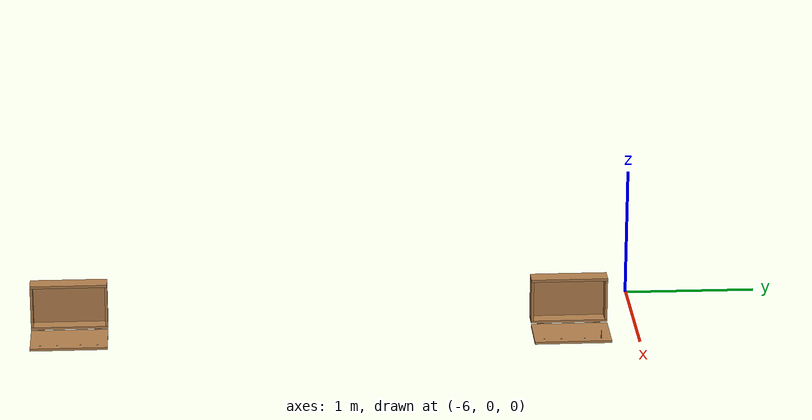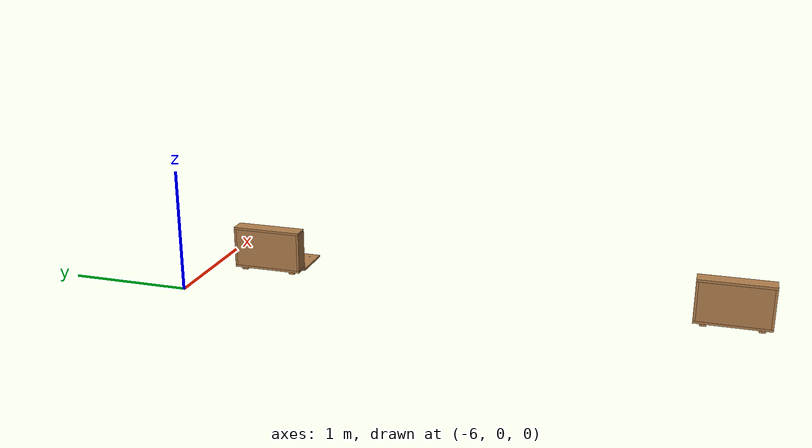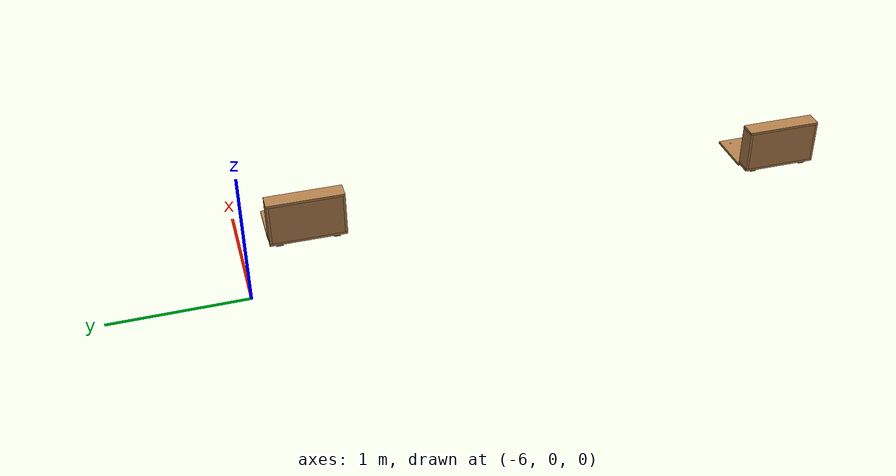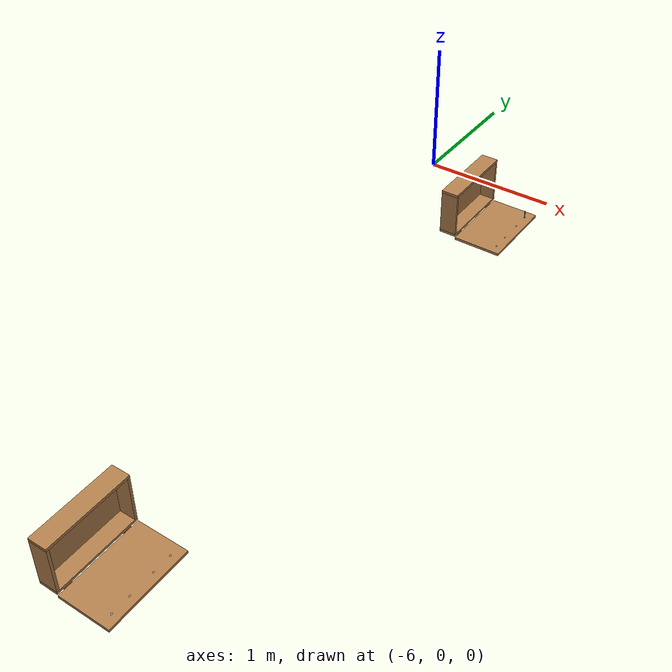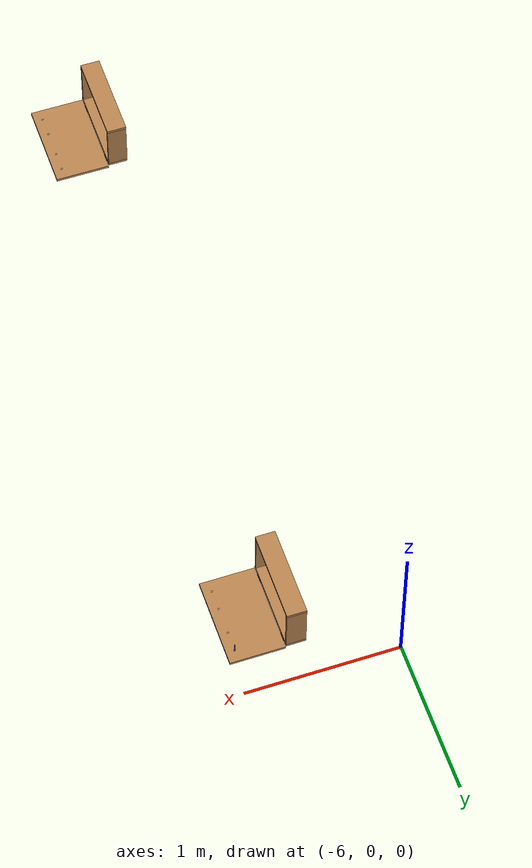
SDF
<sdf version="1.6">
 <world name="default">
  <model name="wooden_case">
   <link name="base">
    <pose>0 0 0.024 0 -0 0</pose>
    <inertial>
     <pose>-0.022184 0 0.171592 0 -0 0</pose>
     <mass>3.96264</mass>
     <inertia>
      <ixx>0.213536</ixx>
      <ixy>0</ixy>
      <ixz>0.000779377</ixz>
      <iyy>0.0708943</iyy>
      <iyz>0</iyz>
      <izz>0.154604</izz>
     </inertia>
    </inertial>
    <collision name="collision_back">
     <pose>-0.053975 0 0.1778 0 -0 0</pose>
     <geometry><box><size>0.01905 0.5461 0.3175</size></box></geometry>
     <surface>
      <contact>
       <poissons_ratio>0.347</poissons_ratio>
       <elastic_modulus>8.8e+09</elastic_modulus>
       <ode><kp>100000</kp><kd>100</kd><max_vel>100</max_vel><min_depth>0.001</min_depth></ode>
      </contact>
      <friction>
       <torsional>
        <coefficient>1</coefficient>
        <use_patch_radius>0</use_patch_radius>
        <surface_radius>0.01</surface_radius>
       </torsional>
      </friction>
     </surface>
    </collision>
    <visual name="visual_back">
     <pose>-0.053975 0 0.1778 0 -0 0</pose>
     <geometry><box><size>0.01905 0.5461 0.3175</size></box></geometry>
     <material>
      <script><uri>file://media/materials/scripts/gazebo.material</uri><name>Gazebo/Wood</name></script>
     </material>
    </visual>
    <collision name="collision_bottom">
     <pose>0 0 0.009525 0 -0 0</pose>
     <geometry><box><size>0.127 0.5842 0.01905</size></box></geometry>
     <surface>
      <contact>
       <poissons_ratio>0.347</poissons_ratio>
       <elastic_modulus>8.8e+09</elastic_modulus>
       <ode><kp>100000</kp><kd>100</kd><max_vel>100</max_vel><min_depth>0.001</min_depth></ode>
      </contact>
      <friction>
       <torsional>
        <coefficient>1</coefficient>
        <use_patch_radius>0</use_patch_radius>
        <surface_radius>0.01</surface_radius>
       </torsional>
      </friction>
     </surface>
    </collision>
    <visual name="visual_bottom">
     <pose>0 0 0.009525 0 -0 0</pose>
     <geometry><box><size>0.127 0.5842 0.01905</size></box></geometry>
     <material>
      <script><uri>file://media/materials/scripts/gazebo.material</uri><name>Gazebo/Wood</name></script>
     </material>
    </visual>
    <collision name="collision_top">
     <pose>0 0 0.346075 0 -0 0</pose>
     <geometry><box><size>0.127 0.5842 0.01905</size></box></geometry>
     <surface>
      <contact>
       <poissons_ratio>0.347</poissons_ratio>
       <elastic_modulus>8.8e+09</elastic_modulus>
       <ode><kp>100000</kp><kd>100</kd><max_vel>100</max_vel><min_depth>0.001</min_depth></ode>
      </contact>
      <friction>
       <torsional>
        <coefficient>1</coefficient>
        <use_patch_radius>0</use_patch_radius>
        <surface_radius>0.01</surface_radius>
       </torsional>
      </friction>
     </surface>
    </collision>
    <visual name="visual_top">
     <pose>0 0 0.346075 0 -0 0</pose>
     <geometry><box><size>0.127 0.5842 0.01905</size></box></geometry>
     <material>
      <script><uri>file://media/materials/scripts/gazebo.material</uri><name>Gazebo/Wood</name></script>
     </material>
    </visual>
    <collision name="collision_left">
     <pose>0 -0.282575 0.1778 0 -0 0</pose>
     <geometry><box><size>0.127 0.01905 0.3175</size></box></geometry>
     <surface>
      <contact>
       <poissons_ratio>0.347</poissons_ratio>
       <elastic_modulus>8.8e+09</elastic_modulus>
       <ode><kp>100000</kp><kd>100</kd><max_vel>100</max_vel><min_depth>0.001</min_depth></ode>
      </contact>
      <friction>
       <torsional>
        <coefficient>1</coefficient>
        <use_patch_radius>0</use_patch_radius>
        <surface_radius>0.01</surface_radius>
       </torsional>
      </friction>
     </surface>
    </collision>
    <visual name="visual_left">
     <pose>0 -0.282575 0.1778 0 -0 0</pose>
     <geometry><box><size>0.127 0.01905 0.3175</size></box></geometry>
     <material>
      <script><uri>file://media/materials/scripts/gazebo.material</uri><name>Gazebo/Wood</name></script>
     </material>
    </visual>
    <collision name="collision_right">
     <pose>0 0.282575 0.1778 0 -0 0</pose>
     <geometry><box><size>0.127 0.01905 0.3175</size></box></geometry>
     <surface>
      <contact>
       <poissons_ratio>0.347</poissons_ratio>
       <elastic_modulus>8.8e+09</elastic_modulus>
       <ode><kp>100000</kp><kd>100</kd><max_vel>100</max_vel><min_depth>0.001</min_depth></ode>
      </contact>
      <friction>
       <torsional>
        <coefficient>1</coefficient>
        <use_patch_radius>0</use_patch_radius>
        <surface_radius>0.01</surface_radius>
       </torsional>
      </friction>
     </surface>
    </collision>
    <visual name="visual_right">
     <pose>0 0.282575 0.1778 0 -0 0</pose>
     <geometry><box><size>0.127 0.01905 0.3175</size></box></geometry>
     <material>
      <script><uri>file://media/materials/scripts/gazebo.material</uri><name>Gazebo/Wood</name></script>
     </material>
    </visual>
    <collision name="collision_block_left">
     <pose>0.0095 -0.2151 -0.012 0 -0 0</pose>
     <geometry><box><size>0.108 0.05 0.024</size></box></geometry>
     <surface>
      <contact>
       <poissons_ratio>0.347</poissons_ratio>
       <elastic_modulus>8.8e+09</elastic_modulus>
       <ode><kp>100000</kp><kd>100</kd><max_vel>100</max_vel><min_depth>0.001</min_depth></ode>
      </contact>
      <friction>
       <torsional>
        <coefficient>1</coefficient>
        <use_patch_radius>0</use_patch_radius>
        <surface_radius>0.01</surface_radius>
       </torsional>
      </friction>
     </surface>
    </collision>
    <visual name="visual_block_left">
     <pose>0.0095 -0.2151 -0.012 0 -0 0</pose>
     <geometry><box><size>0.108 0.05 0.024</size></box></geometry>
     <material>
      <script><uri>file://media/materials/scripts/gazebo.material</uri><name>Gazebo/Wood</name></script>
     </material>
    </visual>
    <collision name="collision_block_right">
     <pose>0.0095 0.2151 -0.012 0 -0 0</pose>
     <geometry><box><size>0.108 0.05 0.024</size></box></geometry>
     <surface>
      <contact>
       <poissons_ratio>0.347</poissons_ratio>
       <elastic_modulus>8.8e+09</elastic_modulus>
       <ode><kp>100000</kp><kd>100</kd><max_vel>100</max_vel><min_depth>0.001</min_depth></ode>
      </contact>
      <friction>
       <torsional>
        <coefficient>1</coefficient>
        <use_patch_radius>0</use_patch_radius>
        <surface_radius>0.01</surface_radius>
       </torsional>
      </friction>
     </surface>
    </collision>
    <visual name="visual_block_right">
     <pose>0.0095 0.2151 -0.012 0 -0 0</pose>
     <geometry><box><size>0.108 0.05 0.024</size></box></geometry>
     <material>
      <script><uri>file://media/materials/scripts/gazebo.material</uri><name>Gazebo/Wood</name></script>
     </material>
    </visual>
   </link>
   <link name="lid">
    <pose>0.243775 0 0.009525 0 -0 0</pose>
    <inertial>
     <mass>1.97874</mass>
     <inertia>
      <ixx>0.0563367</ixx>
      <ixy>0</ixy>
      <ixz>0</ixz>
      <iyy>0.020911</iyy>
      <iyz>0</iyz>
      <izz>0.0771281</izz>
     </inertia>
    </inertial>
    <collision name="collision">
     <geometry><box><size>0.3556 0.5842 0.01905</size></box></geometry>
     <surface>
      <contact>
       <poissons_ratio>0.347</poissons_ratio>
       <elastic_modulus>8.8e+09</elastic_modulus>
       <ode><kp>100000</kp><kd>100</kd><max_vel>100</max_vel><min_depth>0.001</min_depth></ode>
      </contact>
      <friction>
       <torsional>
        <coefficient>1</coefficient>
        <use_patch_radius>0</use_patch_radius>
        <surface_radius>0.01</surface_radius>
       </torsional>
      </friction>
     </surface>
    </collision>
    <visual name="visual">
     <geometry><box><size>0.3556 0.5842 0.01905</size></box></geometry>
     <material>
      <script><uri>file://media/materials/scripts/gazebo.material</uri><name>Gazebo/Wood</name></script>
     </material>
    </visual>
    <visual name="tee_nut_1">
     <pose>0.122 -0.216 0 0 -0 0</pose>
     <geometry><cylinder><radius>0.00635</radius><length>0.0192405</length></cylinder></geometry>
     <material>
      <script><uri>file://media/materials/scripts/gazebo.material</uri><name>Gazebo/Grey</name></script>
     </material>
    </visual>
    <visual name="tee_nut_2">
     <pose>0.122 -0.088 0 0 -0 0</pose>
     <geometry><cylinder><radius>0.00635</radius><length>0.0192405</length></cylinder></geometry>
     <material>
      <script><uri>file://media/materials/scripts/gazebo.material</uri><name>Gazebo/Grey</name></script>
     </material>
    </visual>
    <visual name="tee_nut_3">
     <pose>0.122 0.088 0 0 -0 0</pose>
     <geometry><cylinder><radius>0.00635</radius><length>0.0192405</length></cylinder></geometry>
     <material>
      <script><uri>file://media/materials/scripts/gazebo.material</uri><name>Gazebo/Grey</name></script>
     </material>
    </visual>
    <visual name="tee_nut_4">
     <pose>0.122 0.216 0 0 -0 0</pose>
     <geometry><cylinder><radius>0.00635</radius><length>0.0192405</length></cylinder></geometry>
     <material>
      <script><uri>file://media/materials/scripts/gazebo.material</uri><name>Gazebo/Grey</name></script>
     </material>
    </visual>
   </link>
   <joint name="lid_hinge" type="revolute">
    <pose>-0.1778 0 0.01905 0 -0 0</pose>
    <parent>base</parent>
    <child>lid</child>
    <axis>
     <xyz>0 1 0</xyz>
     <limit><upper>0.523599</upper><lower>-1.5708</lower></limit>
     <use_parent_model_frame>0</use_parent_model_frame>
     <dynamics><spring_reference>0</spring_reference><spring_stiffness>0</spring_stiffness></dynamics>
    </axis>
   </joint>
   <pose>-5.48873 -4.31559 0.003943 0 -0.000431 -3e-06</pose>
  </model>
  <model name="wooden_case_metal_peg">
   <link name="wooden_case::base">
    <pose>0 0 0.024 0 -0 0</pose>
    <inertial>
     <pose>-0.022184 0 0.171592 0 -0 0</pose>
     <mass>3.96264</mass>
     <inertia>
      <ixx>0.213536</ixx>
      <ixy>0</ixy>
      <ixz>0.000779377</ixz>
      <iyy>0.0708943</iyy>
      <iyz>0</iyz>
      <izz>0.154604</izz>
     </inertia>
    </inertial>
    <collision name="collision_back">
     <pose>-0.053975 0 0.1778 0 -0 0</pose>
     <geometry><box><size>0.01905 0.5461 0.3175</size></box></geometry>
     <surface>
      <contact>
       <poissons_ratio>0.347</poissons_ratio>
       <elastic_modulus>8.8e+09</elastic_modulus>
       <ode><kp>100000</kp><kd>100</kd><max_vel>100</max_vel><min_depth>0.001</min_depth></ode>
      </contact>
      <friction>
       <torsional>
        <coefficient>1</coefficient>
        <use_patch_radius>0</use_patch_radius>
        <surface_radius>0.01</surface_radius>
       </torsional>
      </friction>
     </surface>
    </collision>
    <visual name="visual_back">
     <pose>-0.053975 0 0.1778 0 -0 0</pose>
     <geometry><box><size>0.01905 0.5461 0.3175</size></box></geometry>
     <material>
      <script><uri>file://media/materials/scripts/gazebo.material</uri><name>Gazebo/Wood</name></script>
     </material>
    </visual>
    <collision name="collision_bottom">
     <pose>0 0 0.009525 0 -0 0</pose>
     <geometry><box><size>0.127 0.5842 0.01905</size></box></geometry>
     <surface>
      <contact>
       <poissons_ratio>0.347</poissons_ratio>
       <elastic_modulus>8.8e+09</elastic_modulus>
       <ode><kp>100000</kp><kd>100</kd><max_vel>100</max_vel><min_depth>0.001</min_depth></ode>
      </contact>
      <friction>
       <torsional>
        <coefficient>1</coefficient>
        <use_patch_radius>0</use_patch_radius>
        <surface_radius>0.01</surface_radius>
       </torsional>
      </friction>
     </surface>
    </collision>
    <visual name="visual_bottom">
     <pose>0 0 0.009525 0 -0 0</pose>
     <geometry><box><size>0.127 0.5842 0.01905</size></box></geometry>
     <material>
      <script><uri>file://media/materials/scripts/gazebo.material</uri><name>Gazebo/Wood</name></script>
     </material>
    </visual>
    <collision name="collision_top">
     <pose>0 0 0.346075 0 -0 0</pose>
     <geometry><box><size>0.127 0.5842 0.01905</size></box></geometry>
     <surface>
      <contact>
       <poissons_ratio>0.347</poissons_ratio>
       <elastic_modulus>8.8e+09</elastic_modulus>
       <ode><kp>100000</kp><kd>100</kd><max_vel>100</max_vel><min_depth>0.001</min_depth></ode>
      </contact>
      <friction>
       <torsional>
        <coefficient>1</coefficient>
        <use_patch_radius>0</use_patch_radius>
        <surface_radius>0.01</surface_radius>
       </torsional>
      </friction>
     </surface>
    </collision>
    <visual name="visual_top">
     <pose>0 0 0.346075 0 -0 0</pose>
     <geometry><box><size>0.127 0.5842 0.01905</size></box></geometry>
     <material>
      <script><uri>file://media/materials/scripts/gazebo.material</uri><name>Gazebo/Wood</name></script>
     </material>
    </visual>
    <collision name="collision_left">
     <pose>0 -0.282575 0.1778 0 -0 0</pose>
     <geometry><box><size>0.127 0.01905 0.3175</size></box></geometry>
     <surface>
      <contact>
       <poissons_ratio>0.347</poissons_ratio>
       <elastic_modulus>8.8e+09</elastic_modulus>
       <ode><kp>100000</kp><kd>100</kd><max_vel>100</max_vel><min_depth>0.001</min_depth></ode>
      </contact>
      <friction>
       <torsional>
        <coefficient>1</coefficient>
        <use_patch_radius>0</use_patch_radius>
        <surface_radius>0.01</surface_radius>
       </torsional>
      </friction>
     </surface>
    </collision>
    <visual name="visual_left">
     <pose>0 -0.282575 0.1778 0 -0 0</pose>
     <geometry><box><size>0.127 0.01905 0.3175</size></box></geometry>
     <material>
      <script><uri>file://media/materials/scripts/gazebo.material</uri><name>Gazebo/Wood</name></script>
     </material>
    </visual>
    <collision name="collision_right">
     <pose>0 0.282575 0.1778 0 -0 0</pose>
     <geometry><box><size>0.127 0.01905 0.3175</size></box></geometry>
     <surface>
      <contact>
       <poissons_ratio>0.347</poissons_ratio>
       <elastic_modulus>8.8e+09</elastic_modulus>
       <ode><kp>100000</kp><kd>100</kd><max_vel>100</max_vel><min_depth>0.001</min_depth></ode>
      </contact>
      <friction>
       <torsional>
        <coefficient>1</coefficient>
        <use_patch_radius>0</use_patch_radius>
        <surface_radius>0.01</surface_radius>
       </torsional>
      </friction>
     </surface>
    </collision>
    <visual name="visual_right">
     <pose>0 0.282575 0.1778 0 -0 0</pose>
     <geometry><box><size>0.127 0.01905 0.3175</size></box></geometry>
     <material>
      <script><uri>file://media/materials/scripts/gazebo.material</uri><name>Gazebo/Wood</name></script>
     </material>
    </visual>
    <collision name="collision_block_left">
     <pose>0.0095 -0.2151 -0.012 0 -0 0</pose>
     <geometry><box><size>0.108 0.05 0.024</size></box></geometry>
     <surface>
      <contact>
       <poissons_ratio>0.347</poissons_ratio>
       <elastic_modulus>8.8e+09</elastic_modulus>
       <ode><kp>100000</kp><kd>100</kd><max_vel>100</max_vel><min_depth>0.001</min_depth></ode>
      </contact>
      <friction>
       <torsional>
        <coefficient>1</coefficient>
        <use_patch_radius>0</use_patch_radius>
        <surface_radius>0.01</surface_radius>
       </torsional>
      </friction>
     </surface>
    </collision>
    <visual name="visual_block_left">
     <pose>0.0095 -0.2151 -0.012 0 -0 0</pose>
     <geometry><box><size>0.108 0.05 0.024</size></box></geometry>
     <material>
      <script><uri>file://media/materials/scripts/gazebo.material</uri><name>Gazebo/Wood</name></script>
     </material>
    </visual>
    <collision name="collision_block_right">
     <pose>0.0095 0.2151 -0.012 0 -0 0</pose>
     <geometry><box><size>0.108 0.05 0.024</size></box></geometry>
     <surface>
      <contact>
       <poissons_ratio>0.347</poissons_ratio>
       <elastic_modulus>8.8e+09</elastic_modulus>
       <ode><kp>100000</kp><kd>100</kd><max_vel>100</max_vel><min_depth>0.001</min_depth></ode>
      </contact>
      <friction>
       <torsional>
        <coefficient>1</coefficient>
        <use_patch_radius>0</use_patch_radius>
        <surface_radius>0.01</surface_radius>
       </torsional>
      </friction>
     </surface>
    </collision>
    <visual name="visual_block_right">
     <pose>0.0095 0.2151 -0.012 0 -0 0</pose>
     <geometry><box><size>0.108 0.05 0.024</size></box></geometry>
     <material>
      <script><uri>file://media/materials/scripts/gazebo.material</uri><name>Gazebo/Wood</name></script>
     </material>
    </visual>
   </link>
   <link name="wooden_case::lid">
    <pose>0.243775 0 0.009525 0 -0 0</pose>
    <inertial>
     <mass>1.97874</mass>
     <inertia>
      <ixx>0.0563367</ixx>
      <ixy>0</ixy>
      <ixz>0</ixz>
      <iyy>0.020911</iyy>
      <iyz>0</iyz>
      <izz>0.0771281</izz>
     </inertia>
    </inertial>
    <collision name="collision">
     <geometry><box><size>0.3556 0.5842 0.01905</size></box></geometry>
     <surface>
      <contact>
       <poissons_ratio>0.347</poissons_ratio>
       <elastic_modulus>8.8e+09</elastic_modulus>
       <ode><kp>100000</kp><kd>100</kd><max_vel>100</max_vel><min_depth>0.001</min_depth></ode>
      </contact>
      <friction>
       <torsional>
        <coefficient>1</coefficient>
        <use_patch_radius>0</use_patch_radius>
        <surface_radius>0.01</surface_radius>
       </torsional>
      </friction>
     </surface>
    </collision>
    <visual name="visual">
     <geometry><box><size>0.3556 0.5842 0.01905</size></box></geometry>
     <material>
      <script><uri>file://media/materials/scripts/gazebo.material</uri><name>Gazebo/Wood</name></script>
     </material>
    </visual>
    <visual name="tee_nut_1">
     <pose>0.122 -0.216 0 0 -0 0</pose>
     <geometry><cylinder><radius>0.00635</radius><length>0.0192405</length></cylinder></geometry>
     <material>
      <script><uri>file://media/materials/scripts/gazebo.material</uri><name>Gazebo/Grey</name></script>
     </material>
    </visual>
    <visual name="tee_nut_2">
     <pose>0.122 -0.088 0 0 -0 0</pose>
     <geometry><cylinder><radius>0.00635</radius><length>0.0192405</length></cylinder></geometry>
     <material>
      <script><uri>file://media/materials/scripts/gazebo.material</uri><name>Gazebo/Grey</name></script>
     </material>
    </visual>
    <visual name="tee_nut_3">
     <pose>0.122 0.088 0 0 -0 0</pose>
     <geometry><cylinder><radius>0.00635</radius><length>0.0192405</length></cylinder></geometry>
     <material>
      <script><uri>file://media/materials/scripts/gazebo.material</uri><name>Gazebo/Grey</name></script>
     </material>
    </visual>
    <visual name="tee_nut_4">
     <pose>0.122 0.216 0 0 -0 0</pose>
     <geometry><cylinder><radius>0.00635</radius><length>0.0192405</length></cylinder></geometry>
     <material>
      <script><uri>file://media/materials/scripts/gazebo.material</uri><name>Gazebo/Grey</name></script>
     </material>
    </visual>
   </link>
   <joint name="wooden_case::lid_hinge" type="revolute">
    <pose>-0.1778 0 0.01905 0 -0 0</pose>
    <parent>wooden_case::base</parent>
    <child>wooden_case::lid</child>
    <axis>
     <xyz>0 1 0</xyz>
     <limit><upper>0.523599</upper><lower>-1.5708</lower></limit>
     <use_parent_model_frame>0</use_parent_model_frame>
     <dynamics><spring_reference>0</spring_reference><spring_stiffness>0</spring_stiffness></dynamics>
    </axis>
   </joint>
   <link name="peg::link">
    <pose>0.365774 0.216 0.05005 0 -0 0</pose>
    <inertial>
     <mass>0.0121</mass>
     <inertia>
      <ixx>3.90898e-06</ixx>
      <ixy>0</ixy>
      <ixz>0</ixz>
      <iyy>3.90898e-06</iyy>
      <iyz>0</iyz>
      <izz>6.58845e-08</izz>
     </inertia>
    </inertial>
    <collision name="collision">
     <geometry><cylinder><radius>0.0033</radius><length>0.062</length></cylinder></geometry>
     <surface>
      <contact>
       <poissons_ratio>0.305</poissons_ratio>
       <elastic_modulus>2e+11</elastic_modulus>
       <ode><kp>100000</kp><kd>100</kd><max_vel>100</max_vel><min_depth>0.001</min_depth></ode>
      </contact>
      <friction>
       <torsional>
        <coefficient>1</coefficient>
        <use_patch_radius>0</use_patch_radius>
        <surface_radius>0.01</surface_radius>
       </torsional>
      </friction>
     </surface>
    </collision>
    <visual name="visual">
     <geometry><cylinder><radius>0.0033</radius><length>0.062</length></cylinder></geometry>
     <material>
      <script><uri>file://media/materials/scripts/gazebo.material</uri><name>Gazebo/Grey</name></script>
     </material>
    </visual>
   </link>
   <joint name="case_peg" type="revolute">
    <child>peg::link</child>
    <parent>wooden_case::lid</parent>
    <axis>
     <xyz>0 0 1</xyz>
     <limit><upper>0</upper><lower>0</lower></limit>
     <use_parent_model_frame>0</use_parent_model_frame>
     <dynamics><spring_reference>0</spring_reference><spring_stiffness>0</spring_stiffness></dynamics>
    </axis>
   </joint>
   <pose>-5.4037 -0.506076 0.003943 0 -0.000431 0.000105</pose>
  </model>
 </world>
</sdf>
